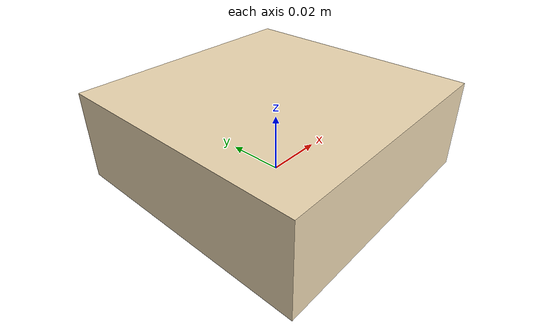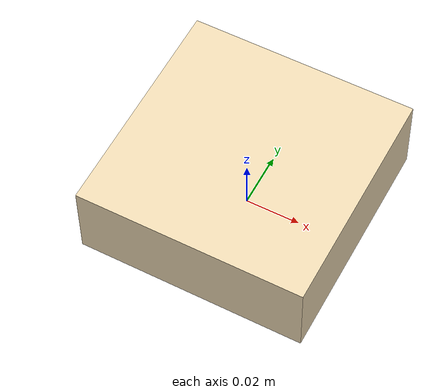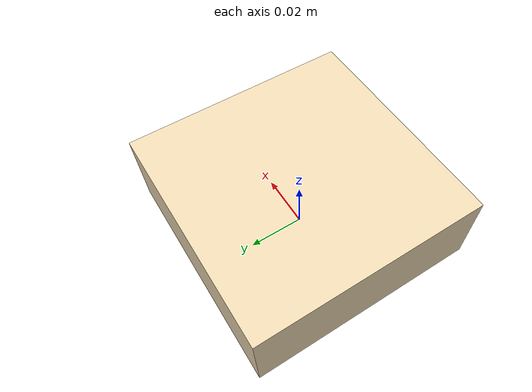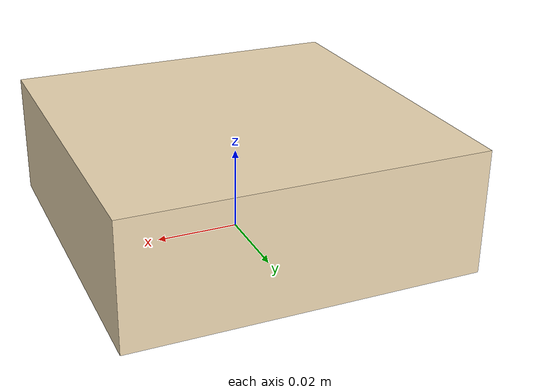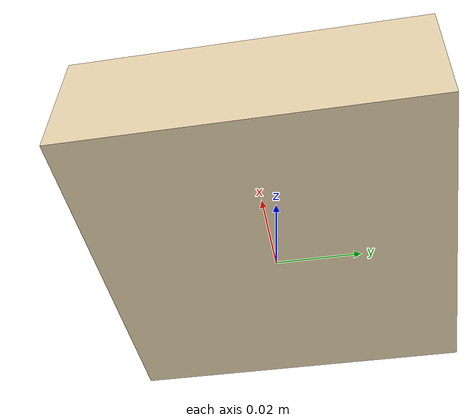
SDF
<?xml version="1.0"?>
<sdf version="1.9">
  <model name="robosub_item_bandage">
    <static>false</static>
    <plugin filename="gz-sim-label-system" name="gz::sim::systems::Label">
      <label>24</label>
    </plugin>
    <link name="body">
      <pose>0 0 0.015 0 0 0</pose>
      <inertial>
        <pose>0 0 0 0 0 0</pose>
        <mass>0.243432</mass>
        <inertia>
          <ixx>0.000161395</ixx><ixy>0</ixy><ixz>0</ixz>
          <iyy>0.000161395</iyy><iyz>0</iyz>
          <izz>0.000286276</izz>
        </inertia>
      </inertial>
      <visual name="body_visual">
        <pose>0 0 0 0 0 0</pose>
        <geometry><box><size>0.084 0.084 0.03</size></box></geometry>
        <material>
          <ambient>0.93 0.85 0.7 1</ambient>
          <diffuse>0.93 0.85 0.7 1</diffuse>
          <specular>0.14 0.14 0.14 1</specular>
          <emissive>0.1 0.1 0.1 1</emissive>
          <pbr>
            <metal>
              <albedo_map>model://robosub_textures/albedo_plastic.png</albedo_map>
              <metalness>0.0</metalness>
              <roughness_map>model://robosub_textures/rough_plastic.png</roughness_map>
              <normal_map>model://robosub_textures/norm_plastic.png</normal_map>
            </metal>
          </pbr>
        </material>
      </visual>
      <collision name="body_collision">
        <pose>0 0 0 0 0 0</pose>
        <geometry><box><size>0.084 0.084 0.03</size></box></geometry>
      </collision>
    </link>
  </model>
</sdf>
